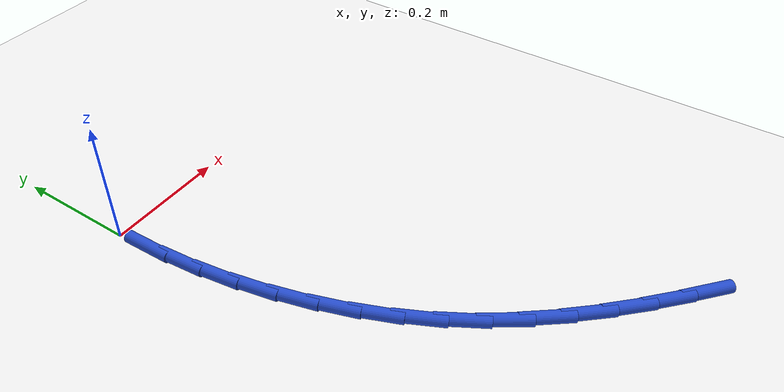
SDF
<sdf version="1.6">
 <world name="default">
  <model name="ground_plane">
   <static>1</static>
   <link name="link">
    <collision name="collision">
     <geometry><plane><normal>0 0 1</normal><size>100 100</size></plane></geometry>
     <surface><friction><ode><mu>100</mu><mu2>50</mu2></ode></friction></surface>
    </collision>
    <visual name="visual">
     <cast_shadows>0</cast_shadows>
     <geometry><plane><normal>0 0 1</normal><size>100 100</size></plane></geometry>
     <material>
      <script><uri>file://media/materials/scripts/gazebo.material</uri><name>Gazebo/WhiteGlow</name></script>
     </material>
    </visual>
   </link>
  </model>
  <model name="line">
   <link name="link_105">
    <pose>0.3810935390587459 -0.7697493227533501 0.01 0 1.57 -0.7141411289911428</pose>
    <collision name="collision">
     <geometry><cylinder><radius>0.01</radius><length>0.08</length></cylinder></geometry>
    </collision>
    <visual name="visual">
     <material>
      <script><name>Gazebo/Blue</name><uri>file://media/materials/scripts/gazebo.material</uri></script>
     </material>
     <geometry><cylinder><radius>0.01</radius><length>0.08</length></cylinder></geometry>
    </visual>
   </link>
   <link name="link_106">
    <pose>0.33569029104750125 -0.73039583144398 0.01 0 1.57 -0.7458703466259364</pose>
    <collision name="collision">
     <geometry><cylinder><radius>0.01</radius><length>0.08</length></cylinder></geometry>
    </collision>
    <visual name="visual">
     <material>
      <script><name>Gazebo/Blue</name><uri>file://media/materials/scripts/gazebo.material</uri></script>
     </material>
     <geometry><cylinder><radius>0.01</radius><length>0.08</length></cylinder></geometry>
    </visual>
   </link>
   <link name="link_107">
    <pose>0.2920379511308051 -0.6900648970286238 0.01 0 1.57 -0.7863761335344285</pose>
    <collision name="collision">
     <geometry><cylinder><radius>0.01</radius><length>0.08</length></cylinder></geometry>
    </collision>
    <visual name="visual">
     <material>
      <script><name>Gazebo/Blue</name><uri>file://media/materials/scripts/gazebo.material</uri></script>
     </material>
     <geometry><cylinder><radius>0.01</radius><length>0.08</length></cylinder></geometry>
    </visual>
   </link>
   <link name="link_108">
    <pose>0.2504778168307329 -0.6484233939859415 0.01 0 1.57 -0.8358161902197984</pose>
    <collision name="collision">
     <geometry><cylinder><radius>0.01</radius><length>0.08</length></cylinder></geometry>
    </collision>
    <visual name="visual">
     <material>
      <script><name>Gazebo/Blue</name><uri>file://media/materials/scripts/gazebo.material</uri></script>
     </material>
     <geometry><cylinder><radius>0.01</radius><length>0.08</length></cylinder></geometry>
    </visual>
   </link>
   <link name="link_109">
    <pose>0.21135118566936217 -0.6051381967945944 0.01 0 1.57 -0.8941424147235607</pose>
    <collision name="collision">
     <geometry><cylinder><radius>0.01</radius><length>0.08</length></cylinder></geometry>
    </collision>
    <visual name="visual">
     <material>
      <script><name>Gazebo/Blue</name><uri>file://media/materials/scripts/gazebo.material</uri></script>
     </material>
     <geometry><cylinder><radius>0.01</radius><length>0.08</length></cylinder></geometry>
    </visual>
   </link>
   <link name="link_110">
    <pose>0.17499935516876847 -0.5598761799332422 0.01 0 1.57 -0.9609828957472242</pose>
    <collision name="collision">
     <geometry><cylinder><radius>0.01</radius><length>0.08</length></cylinder></geometry>
    </collision>
    <visual name="visual">
     <material>
      <script><name>Gazebo/Blue</name><uri>file://media/materials/scripts/gazebo.material</uri></script>
     </material>
     <geometry><cylinder><radius>0.01</radius><length>0.08</length></cylinder></geometry>
    </visual>
   </link>
   <link name="link_111">
    <pose>0.141763622851028 -0.5123042178805456 0.01 0 1.57 -1.0347531139358144</pose>
    <collision name="collision">
     <geometry><cylinder><radius>0.01</radius><length>0.08</length></cylinder></geometry>
    </collision>
    <visual name="visual">
     <material>
      <script><name>Gazebo/Blue</name><uri>file://media/materials/scripts/gazebo.material</uri></script>
     </material>
     <geometry><cylinder><radius>0.01</radius><length>0.08</length></cylinder></geometry>
    </visual>
   </link>
   <link name="link_112">
    <pose>0.11196063329524515 -0.4621362230639396 0.01 0 1.57 -1.1079372136071923</pose>
    <collision name="collision">
     <geometry><cylinder><radius>0.01</radius><length>0.08</length></cylinder></geometry>
    </collision>
    <visual name="visual">
     <material>
      <script><name>Gazebo/Blue</name><uri>file://media/materials/scripts/gazebo.material</uri></script>
     </material>
     <geometry><cylinder><radius>0.01</radius><length>0.08</length></cylinder></geometry>
    </visual>
   </link>
   <link name="link_113">
    <pose>0.08569229628143976 -0.40949582307109117 0.01 0 1.57 -1.1772781707911872</pose>
    <collision name="collision">
     <geometry><cylinder><radius>0.01</radius><length>0.08</length></cylinder></geometry>
    </collision>
    <visual name="visual">
     <material>
      <script><name>Gazebo/Blue</name><uri>file://media/materials/scripts/gazebo.material</uri></script>
     </material>
     <geometry><cylinder><radius>0.01</radius><length>0.08</length></cylinder></geometry>
    </visual>
   </link>
   <link name="link_114">
    <pose>0.06294988692891056 -0.35471773702181014 0.01 0 1.57 -1.2432295755597351</pose>
    <collision name="collision">
     <geometry><cylinder><radius>0.01</radius><length>0.08</length></cylinder></geometry>
    </collision>
    <visual name="visual">
     <material>
      <script><name>Gazebo/Blue</name><uri>file://media/materials/scripts/gazebo.material</uri></script>
     </material>
     <geometry><cylinder><radius>0.01</radius><length>0.08</length></cylinder></geometry>
    </visual>
   </link>
   <link name="link_115">
    <pose>0.043723763957290614 -0.29813843253143424 0.01 0 1.57 -1.3063205781543628</pose>
    <collision name="collision">
     <geometry><cylinder><radius>0.01</radius><length>0.08</length></cylinder></geometry>
    </collision>
    <visual name="visual">
     <material>
      <script><name>Gazebo/Blue</name><uri>file://media/materials/scripts/gazebo.material</uri></script>
     </material>
     <geometry><cylinder><radius>0.01</radius><length>0.08</length></cylinder></geometry>
    </visual>
   </link>
   <link name="link_116">
    <pose>0.028004286086213744 -0.24009437721530377 0.01 0 1.57 -1.3671037666590595</pose>
    <collision name="collision">
     <geometry><cylinder><radius>0.01</radius><length>0.08</length></cylinder></geometry>
    </collision>
    <visual name="visual">
     <material>
      <script><name>Gazebo/Blue</name><uri>file://media/materials/scripts/gazebo.material</uri></script>
     </material>
     <geometry><cylinder><radius>0.01</radius><length>0.08</length></cylinder></geometry>
    </visual>
   </link>
   <link name="link_117">
    <pose>0.015781812035312946 -0.18092203868875656 0.01 0 1.57 -1.4261415894401424</pose>
    <collision name="collision">
     <geometry><cylinder><radius>0.01</radius><length>0.08</length></cylinder></geometry>
    </collision>
    <visual name="visual">
     <material>
      <script><name>Gazebo/Blue</name><uri>file://media/materials/scripts/gazebo.material</uri></script>
     </material>
     <geometry><cylinder><radius>0.01</radius><length>0.08</length></cylinder></geometry>
    </visual>
   </link>
   <link name="link_118">
    <pose>0.007046700524221522 -0.12095788456713123 0.01 0 1.57 -1.4840001580190696</pose>
    <collision name="collision">
     <geometry><cylinder><radius>0.01</radius><length>0.08</length></cylinder></geometry>
    </collision>
    <visual name="visual">
     <material>
      <script><name>Gazebo/Blue</name><uri>file://media/materials/scripts/gazebo.material</uri></script>
     </material>
     <geometry><cylinder><radius>0.01</radius><length>0.08</length></cylinder></geometry>
    </visual>
   </link>
   <link name="link_119">
    <pose>0.0017893102725726924 -0.0605383824657656 0.01 0 1.57 -1.5412483040524847</pose>
    <collision name="collision">
     <geometry><cylinder><radius>0.01</radius><length>0.08</length></cylinder></geometry>
    </collision>
    <visual name="visual">
     <material>
      <script><name>Gazebo/Blue</name><uri>file://media/materials/scripts/gazebo.material</uri></script>
     </material>
     <geometry><cylinder><radius>0.01</radius><length>0.08</length></cylinder></geometry>
    </visual>
   </link>
  </model>
 </world>
</sdf>
